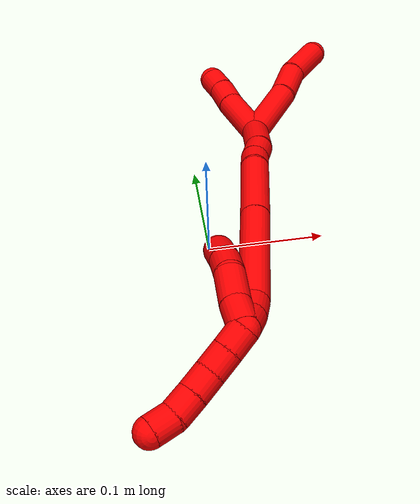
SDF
<sdf version="1.7">
 <world name="default">
  <model name="2">
   <static>0</static>
   <link name="2">
    <collision name="collision-cylinder-e_1_2_8">
     <pose>-0.016816 0.020064 0.017414 -0.855982 -0.564312 0.262965</pose>
     <geometry><cylinder><radius>0.0125</radius><length>0.062883</length></cylinder></geometry>
     <surface>
      <friction><ode><mu>1.16</mu><mu2>1.16</mu2><slip1>0</slip1><slip2>0</slip2></ode></friction>
      <contact><ode><kp>1e+06</kp><kd>1</kd><max_vel>0</max_vel><min_depth>0.001</min_depth></ode></contact>
     </surface>
    </collision>
    <visual name="visual-cylinder-e_1_2_8">
     <pose>-0.016816 0.020064 0.017414 -0.855982 -0.564312 0.262965</pose>
     <geometry><cylinder><radius>0.0125</radius><length>0.062883</length></cylinder></geometry>
     <material><ambient>1 0 0 1</ambient></material>
    </visual>
    <collision name="collision-cylinder-e_2_8_9">
     <pose>-0.040872 0.051772 0.046967 -0.764639 -0.406439 0.165341</pose>
     <geometry><cylinder><radius>0.0125</radius><length>0.036626</length></cylinder></geometry>
     <surface>
      <friction><ode><mu>1.16</mu><mu2>1.16</mu2><slip1>0</slip1><slip2>0</slip2></ode></friction>
      <contact><ode><kp>1e+06</kp><kd>1</kd><max_vel>0</max_vel><min_depth>0.001</min_depth></ode></contact>
     </surface>
    </collision>
    <visual name="visual-cylinder-e_2_8_9">
     <pose>-0.040872 0.051772 0.046967 -0.764639 -0.406439 0.165341</pose>
     <geometry><cylinder><radius>0.0125</radius><length>0.036626</length></cylinder></geometry>
     <material><ambient>1 0 0 1</ambient></material>
    </visual>
    <collision name="collision-cylinder-e_3_9_6">
     <pose>-0.063004 0.076303 0.074901 -0.684283 -0.630941 0.231434</pose>
     <geometry><cylinder><radius>0.0125</radius><length>0.050491</length></cylinder></geometry>
     <surface>
      <friction><ode><mu>1.16</mu><mu2>1.16</mu2><slip1>0</slip1><slip2>0</slip2></ode></friction>
      <contact><ode><kp>1e+06</kp><kd>1</kd><max_vel>0</max_vel><min_depth>0.001</min_depth></ode></contact>
     </surface>
    </collision>
    <visual name="visual-cylinder-e_3_9_6">
     <pose>-0.063004 0.076303 0.074901 -0.684283 -0.630941 0.231434</pose>
     <geometry><cylinder><radius>0.0125</radius><length>0.050491</length></cylinder></geometry>
     <material><ambient>1 0 0 1</ambient></material>
    </visual>
    <collision name="collision-cylinder-e_1_2_10">
     <pose>0.008243 0.012177 0.021318 -0.518967 0.323939 -0.086701</pose>
     <geometry><cylinder><radius>0.0125</radius><length>0.051796</length></cylinder></geometry>
     <surface>
      <friction><ode><mu>1.16</mu><mu2>1.16</mu2><slip1>0</slip1><slip2>0</slip2></ode></friction>
      <contact><ode><kp>1e+06</kp><kd>1</kd><max_vel>0</max_vel><min_depth>0.001</min_depth></ode></contact>
     </surface>
    </collision>
    <visual name="visual-cylinder-e_1_2_10">
     <pose>0.008243 0.012177 0.021318 -0.518967 0.323939 -0.086701</pose>
     <geometry><cylinder><radius>0.0125</radius><length>0.051796</length></cylinder></geometry>
     <material><ambient>1 0 0 1</ambient></material>
    </visual>
    <collision name="collision-cylinder-e_2_10_11">
     <pose>0.01946 0.031056 0.053098 -0.569765 0.23487 -0.069072</pose>
     <geometry><cylinder><radius>0.0125</radius><length>0.02555</length></cylinder></geometry>
     <surface>
      <friction><ode><mu>1.16</mu><mu2>1.16</mu2><slip1>0</slip1><slip2>0</slip2></ode></friction>
      <contact><ode><kp>1e+06</kp><kd>1</kd><max_vel>0</max_vel><min_depth>0.001</min_depth></ode></contact>
     </surface>
    </collision>
    <visual name="visual-cylinder-e_2_10_11">
     <pose>0.01946 0.031056 0.053098 -0.569765 0.23487 -0.069072</pose>
     <geometry><cylinder><radius>0.0125</radius><length>0.02555</length></cylinder></geometry>
     <material><ambient>1 0 0 1</ambient></material>
    </visual>
    <collision name="collision-cylinder-e_3_11_5">
     <pose>0.025906 0.042998 0.072982 -0.507537 0.311652 -0.081446</pose>
     <geometry><cylinder><radius>0.0125</radius><length>0.022654</length></cylinder></geometry>
     <surface>
      <friction><ode><mu>1.16</mu><mu2>1.16</mu2><slip1>0</slip1><slip2>0</slip2></ode></friction>
      <contact><ode><kp>1e+06</kp><kd>1</kd><max_vel>0</max_vel><min_depth>0.001</min_depth></ode></contact>
     </surface>
    </collision>
    <visual name="visual-cylinder-e_3_11_5">
     <pose>0.025906 0.042998 0.072982 -0.507537 0.311652 -0.081446</pose>
     <geometry><cylinder><radius>0.0125</radius><length>0.022654</length></cylinder></geometry>
     <material><ambient>1 0 0 1</ambient></material>
    </visual>
    <collision name="collision-cylinder-e_1_2_12">
     <pose>0.003104 -0.007316 -0.021428 2.81258 0.136262 0.779992</pose>
     <geometry><cylinder><radius>0.0125</radius><length>0.045708</length></cylinder></geometry>
     <surface>
      <friction><ode><mu>1.16</mu><mu2>1.16</mu2><slip1>0</slip1><slip2>0</slip2></ode></friction>
      <contact><ode><kp>1e+06</kp><kd>1</kd><max_vel>0</max_vel><min_depth>0.001</min_depth></ode></contact>
     </surface>
    </collision>
    <visual name="visual-cylinder-e_1_2_12">
     <pose>0.003104 -0.007316 -0.021428 2.81258 0.136262 0.779992</pose>
     <geometry><cylinder><radius>0.0125</radius><length>0.045708</length></cylinder></geometry>
     <material><ambient>1 0 0 1</ambient></material>
    </visual>
    <collision name="collision-cylinder-e_2_12_13">
     <pose>0.010102 -0.019152 -0.052326 2.69626 0.35521 1.34061</pose>
     <geometry><cylinder><radius>0.0125</radius><length>0.022386</length></cylinder></geometry>
     <surface>
      <friction><ode><mu>1.16</mu><mu2>1.16</mu2><slip1>0</slip1><slip2>0</slip2></ode></friction>
      <contact><ode><kp>1e+06</kp><kd>1</kd><max_vel>0</max_vel><min_depth>0.001</min_depth></ode></contact>
     </surface>
    </collision>
    <visual name="visual-cylinder-e_2_12_13">
     <pose>0.010102 -0.019152 -0.052326 2.69626 0.35521 1.34061</pose>
     <geometry><cylinder><radius>0.0125</radius><length>0.022386</length></cylinder></geometry>
     <material><ambient>1 0 0 1</ambient></material>
    </visual>
    <collision name="collision-cylinder-e_3_13_14">
     <pose>0.016056 -0.027429 -0.07094 2.75178 0.205564 0.962951</pose>
     <geometry><cylinder><radius>0.0125</radius><length>0.020196</length></cylinder></geometry>
     <surface>
      <friction><ode><mu>1.16</mu><mu2>1.16</mu2><slip1>0</slip1><slip2>0</slip2></ode></friction>
      <contact><ode><kp>1e+06</kp><kd>1</kd><max_vel>0</max_vel><min_depth>0.001</min_depth></ode></contact>
     </surface>
    </collision>
    <visual name="visual-cylinder-e_3_13_14">
     <pose>0.016056 -0.027429 -0.07094 2.75178 0.205564 0.962951</pose>
     <geometry><cylinder><radius>0.0125</radius><length>0.020196</length></cylinder></geometry>
     <material><ambient>1 0 0 1</ambient></material>
    </visual>
    <collision name="collision-cylinder-e_4_14_15">
     <pose>0.023316 -0.050406 -0.10887 2.55286 0.14908 0.48303</pose>
     <geometry><cylinder><radius>0.0125</radius><length>0.070002</length></cylinder></geometry>
     <surface>
      <friction><ode><mu>1.16</mu><mu2>1.16</mu2><slip1>0</slip1><slip2>0</slip2></ode></friction>
      <contact><ode><kp>1e+06</kp><kd>1</kd><max_vel>0</max_vel><min_depth>0.001</min_depth></ode></contact>
     </surface>
    </collision>
    <visual name="visual-cylinder-e_4_14_15">
     <pose>0.023316 -0.050406 -0.10887 2.55286 0.14908 0.48303</pose>
     <geometry><cylinder><radius>0.0125</radius><length>0.070002</length></cylinder></geometry>
     <material><ambient>1 0 0 1</ambient></material>
    </visual>
    <collision name="collision-cylinder-e_5_15_16">
     <pose>0.036511 -0.098687 -0.178368 2.52168 0.158529 0.486199</pose>
     <geometry><cylinder><radius>0.0125</radius><length>0.10131</length></cylinder></geometry>
     <surface>
      <friction><ode><mu>1.16</mu><mu2>1.16</mu2><slip1>0</slip1><slip2>0</slip2></ode></friction>
      <contact><ode><kp>1e+06</kp><kd>1</kd><max_vel>0</max_vel><min_depth>0.001</min_depth></ode></contact>
     </surface>
    </collision>
    <visual name="visual-cylinder-e_5_15_16">
     <pose>0.036511 -0.098687 -0.178368 2.52168 0.158529 0.486199</pose>
     <geometry><cylinder><radius>0.0125</radius><length>0.10131</length></cylinder></geometry>
     <material><ambient>1 0 0 1</ambient></material>
    </visual>
    <collision name="collision-cylinder-e_6_16_17">
     <pose>0.047644 -0.131712 -0.227749 2.71254 0.317843 1.26844</pose>
     <geometry><cylinder><radius>0.0125</radius><length>0.020071</length></cylinder></geometry>
     <surface>
      <friction><ode><mu>1.16</mu><mu2>1.16</mu2><slip1>0</slip1><slip2>0</slip2></ode></friction>
      <contact><ode><kp>1e+06</kp><kd>1</kd><max_vel>0</max_vel><min_depth>0.001</min_depth></ode></contact>
     </surface>
    </collision>
    <visual name="visual-cylinder-e_6_16_17">
     <pose>0.047644 -0.131712 -0.227749 2.71254 0.317843 1.26844</pose>
     <geometry><cylinder><radius>0.0125</radius><length>0.020071</length></cylinder></geometry>
     <material><ambient>1 0 0 1</ambient></material>
    </visual>
    <collision name="collision-cylinder-e_7_17_1">
     <pose>0.055112 -0.13826 -0.245242 2.85691 0.440345 2.00248</pose>
     <geometry><cylinder><radius>0.0125</radius><length>0.020328</length></cylinder></geometry>
     <surface>
      <friction><ode><mu>1.16</mu><mu2>1.16</mu2><slip1>0</slip1><slip2>0</slip2></ode></friction>
      <contact><ode><kp>1e+06</kp><kd>1</kd><max_vel>0</max_vel><min_depth>0.001</min_depth></ode></contact>
     </surface>
    </collision>
    <visual name="visual-cylinder-e_7_17_1">
     <pose>0.055112 -0.13826 -0.245242 2.85691 0.440345 2.00248</pose>
     <geometry><cylinder><radius>0.0125</radius><length>0.020328</length></cylinder></geometry>
     <material><ambient>1 0 0 1</ambient></material>
    </visual>
    <collision name="collision-cylinder-e_1_1_18">
     <pose>0.060913 -0.134281 -0.243772 -0.567405 0.119705 -0.03494</pose>
     <geometry><cylinder><radius>0.0125</radius><length>0.024591</length></cylinder></geometry>
     <surface>
      <friction><ode><mu>1.16</mu><mu2>1.16</mu2><slip1>0</slip1><slip2>0</slip2></ode></friction>
      <contact><ode><kp>1e+06</kp><kd>1</kd><max_vel>0</max_vel><min_depth>0.001</min_depth></ode></contact>
     </surface>
    </collision>
    <visual name="visual-cylinder-e_1_1_18">
     <pose>0.060913 -0.134281 -0.243772 -0.567405 0.119705 -0.03494</pose>
     <geometry><cylinder><radius>0.0125</radius><length>0.024591</length></cylinder></geometry>
     <material><ambient>1 0 0 1</ambient></material>
    </visual>
    <collision name="collision-cylinder-e_2_18_19">
     <pose>0.062788 -0.118271 -0.220999 -0.64817 0.025991 -0.008732</pose>
     <geometry><cylinder><radius>0.0125</radius><length>0.031314</length></cylinder></geometry>
     <surface>
      <friction><ode><mu>1.16</mu><mu2>1.16</mu2><slip1>0</slip1><slip2>0</slip2></ode></friction>
      <contact><ode><kp>1e+06</kp><kd>1</kd><max_vel>0</max_vel><min_depth>0.001</min_depth></ode></contact>
     </surface>
    </collision>
    <visual name="visual-cylinder-e_2_18_19">
     <pose>0.062788 -0.118271 -0.220999 -0.64817 0.025991 -0.008732</pose>
     <geometry><cylinder><radius>0.0125</radius><length>0.031314</length></cylinder></geometry>
     <material><ambient>1 0 0 1</ambient></material>
    </visual>
    <collision name="collision-cylinder-e_3_19_20">
     <pose>0.06322 -0.10517 -0.198905 -0.362896 0.002403 -0.000441</pose>
     <geometry><cylinder><radius>0.0125</radius><length>0.020573</length></cylinder></geometry>
     <surface>
      <friction><ode><mu>1.16</mu><mu2>1.16</mu2><slip1>0</slip1><slip2>0</slip2></ode></friction>
      <contact><ode><kp>1e+06</kp><kd>1</kd><max_vel>0</max_vel><min_depth>0.001</min_depth></ode></contact>
     </surface>
    </collision>
    <visual name="visual-cylinder-e_3_19_20">
     <pose>0.06322 -0.10517 -0.198905 -0.362896 0.002403 -0.000441</pose>
     <geometry><cylinder><radius>0.0125</radius><length>0.020573</length></cylinder></geometry>
     <material><ambient>1 0 0 1</ambient></material>
    </visual>
    <collision name="collision-cylinder-e_4_20_4">
     <pose>0.06335 -0.099255 -0.177748 -0.193689 0.008963 -0.000871</pose>
     <geometry><cylinder><radius>0.0125</radius><length>0.023522</length></cylinder></geometry>
     <surface>
      <friction><ode><mu>1.16</mu><mu2>1.16</mu2><slip1>0</slip1><slip2>0</slip2></ode></friction>
      <contact><ode><kp>1e+06</kp><kd>1</kd><max_vel>0</max_vel><min_depth>0.001</min_depth></ode></contact>
     </surface>
    </collision>
    <visual name="visual-cylinder-e_4_20_4">
     <pose>0.06335 -0.099255 -0.177748 -0.193689 0.008963 -0.000871</pose>
     <geometry><cylinder><radius>0.0125</radius><length>0.023522</length></cylinder></geometry>
     <material><ambient>1 0 0 1</ambient></material>
    </visual>
    <collision name="collision-cylinder-e_1_1_21">
     <pose>0.065134 -0.148976 -0.255277 1.71863 0.605229 0.694894</pose>
     <geometry><cylinder><radius>0.0125</radius><length>0.02</length></cylinder></geometry>
     <surface>
      <friction><ode><mu>1.16</mu><mu2>1.16</mu2><slip1>0</slip1><slip2>0</slip2></ode></friction>
      <contact><ode><kp>1e+06</kp><kd>1</kd><max_vel>0</max_vel><min_depth>0.001</min_depth></ode></contact>
     </surface>
    </collision>
    <visual name="visual-cylinder-e_1_1_21">
     <pose>0.065134 -0.148976 -0.255277 1.71863 0.605229 0.694894</pose>
     <geometry><cylinder><radius>0.0125</radius><length>0.02</length></cylinder></geometry>
     <material><ambient>1 0 0 1</ambient></material>
    </visual>
    <collision name="collision-cylinder-e_2_21_22">
     <pose>0.076648 -0.165154 -0.257663 1.71572 0.621674 0.711464</pose>
     <geometry><cylinder><radius>0.0125</radius><length>0.02</length></cylinder></geometry>
     <surface>
      <friction><ode><mu>1.16</mu><mu2>1.16</mu2><slip1>0</slip1><slip2>0</slip2></ode></friction>
      <contact><ode><kp>1e+06</kp><kd>1</kd><max_vel>0</max_vel><min_depth>0.001</min_depth></ode></contact>
     </surface>
    </collision>
    <visual name="visual-cylinder-e_2_21_22">
     <pose>0.076648 -0.165154 -0.257663 1.71572 0.621674 0.711464</pose>
     <geometry><cylinder><radius>0.0125</radius><length>0.02</length></cylinder></geometry>
     <material><ambient>1 0 0 1</ambient></material>
    </visual>
    <collision name="collision-cylinder-e_3_22_23">
     <pose>0.08853 -0.180796 -0.261197 1.87195 0.65081 0.859133</pose>
     <geometry><cylinder><radius>0.0125</radius><length>0.02</length></cylinder></geometry>
     <surface>
      <friction><ode><mu>1.16</mu><mu2>1.16</mu2><slip1>0</slip1><slip2>0</slip2></ode></friction>
      <contact><ode><kp>1e+06</kp><kd>1</kd><max_vel>0</max_vel><min_depth>0.001</min_depth></ode></contact>
     </surface>
    </collision>
    <visual name="visual-cylinder-e_3_22_23">
     <pose>0.08853 -0.180796 -0.261197 1.87195 0.65081 0.859133</pose>
     <geometry><cylinder><radius>0.0125</radius><length>0.02</length></cylinder></geometry>
     <material><ambient>1 0 0 1</ambient></material>
    </visual>
    <collision name="collision-cylinder-e_4_23_24">
     <pose>0.100898 -0.195824 -0.265787 1.86247 0.682784 0.891209</pose>
     <geometry><cylinder><radius>0.0125</radius><length>0.02</length></cylinder></geometry>
     <surface>
      <friction><ode><mu>1.16</mu><mu2>1.16</mu2><slip1>0</slip1><slip2>0</slip2></ode></friction>
      <contact><ode><kp>1e+06</kp><kd>1</kd><max_vel>0</max_vel><min_depth>0.001</min_depth></ode></contact>
     </surface>
    </collision>
    <visual name="visual-cylinder-e_4_23_24">
     <pose>0.100898 -0.195824 -0.265787 1.86247 0.682784 0.891209</pose>
     <geometry><cylinder><radius>0.0125</radius><length>0.02</length></cylinder></geometry>
     <material><ambient>1 0 0 1</ambient></material>
    </visual>
    <collision name="collision-cylinder-e_5_24_3">
     <pose>0.115524 -0.208421 -0.270055 1.94629 0.982045 1.3317</pose>
     <geometry><cylinder><radius>0.0125</radius><length>0.02</length></cylinder></geometry>
     <surface>
      <friction><ode><mu>1.16</mu><mu2>1.16</mu2><slip1>0</slip1><slip2>0</slip2></ode></friction>
      <contact><ode><kp>1e+06</kp><kd>1</kd><max_vel>0</max_vel><min_depth>0.001</min_depth></ode></contact>
     </surface>
    </collision>
    <visual name="visual-cylinder-e_5_24_3">
     <pose>0.115524 -0.208421 -0.270055 1.94629 0.982045 1.3317</pose>
     <geometry><cylinder><radius>0.0125</radius><length>0.02</length></cylinder></geometry>
     <material><ambient>1 0 0 1</ambient></material>
    </visual>
    <collision name="collision-sphere-3">
     <pose>0.12384 -0.213587 -0.272091 0 -0 0</pose>
     <geometry><sphere><radius>0.0125</radius></sphere></geometry>
     <surface>
      <friction><ode><mu>1.16</mu><mu2>1.16</mu2><slip1>0</slip1><slip2>0</slip2></ode></friction>
      <contact><ode><kp>1e+06</kp><kd>1</kd><max_vel>0</max_vel><min_depth>0.001</min_depth></ode></contact>
     </surface>
    </collision>
    <visual name="visual-sphere-3">
     <pose>0.12384 -0.213587 -0.272091 0 -0 0</pose>
     <geometry><sphere><radius>0.0125</radius></sphere></geometry>
     <material><ambient>1 0 0 1</ambient></material>
    </visual>
    <collision name="collision-sphere-24">
     <pose>0.107207 -0.203255 -0.268018 0 -0 0</pose>
     <geometry><sphere><radius>0.0125</radius></sphere></geometry>
     <surface>
      <friction><ode><mu>1.16</mu><mu2>1.16</mu2><slip1>0</slip1><slip2>0</slip2></ode></friction>
      <contact><ode><kp>1e+06</kp><kd>1</kd><max_vel>0</max_vel><min_depth>0.001</min_depth></ode></contact>
     </surface>
    </collision>
    <visual name="visual-sphere-24">
     <pose>0.107207 -0.203255 -0.268018 0 -0 0</pose>
     <geometry><sphere><radius>0.0125</radius></sphere></geometry>
     <material><ambient>1 0 0 1</ambient></material>
    </visual>
    <collision name="collision-sphere-23">
     <pose>0.094588 -0.188394 -0.263556 0 -0 0</pose>
     <geometry><sphere><radius>0.0125</radius></sphere></geometry>
     <surface>
      <friction><ode><mu>1.16</mu><mu2>1.16</mu2><slip1>0</slip1><slip2>0</slip2></ode></friction>
      <contact><ode><kp>1e+06</kp><kd>1</kd><max_vel>0</max_vel><min_depth>0.001</min_depth></ode></contact>
     </surface>
    </collision>
    <visual name="visual-sphere-23">
     <pose>0.094588 -0.188394 -0.263556 0 -0 0</pose>
     <geometry><sphere><radius>0.0125</radius></sphere></geometry>
     <material><ambient>1 0 0 1</ambient></material>
    </visual>
    <collision name="collision-sphere-22">
     <pose>0.082472 -0.173198 -0.258837 0 -0 0</pose>
     <geometry><sphere><radius>0.0125</radius></sphere></geometry>
     <surface>
      <friction><ode><mu>1.16</mu><mu2>1.16</mu2><slip1>0</slip1><slip2>0</slip2></ode></friction>
      <contact><ode><kp>1e+06</kp><kd>1</kd><max_vel>0</max_vel><min_depth>0.001</min_depth></ode></contact>
     </surface>
    </collision>
    <visual name="visual-sphere-22">
     <pose>0.082472 -0.173198 -0.258837 0 -0 0</pose>
     <geometry><sphere><radius>0.0125</radius></sphere></geometry>
     <material><ambient>1 0 0 1</ambient></material>
    </visual>
    <collision name="collision-sphere-21">
     <pose>0.070824 -0.15711 -0.256489 0 -0 0</pose>
     <geometry><sphere><radius>0.0125</radius></sphere></geometry>
     <surface>
      <friction><ode><mu>1.16</mu><mu2>1.16</mu2><slip1>0</slip1><slip2>0</slip2></ode></friction>
      <contact><ode><kp>1e+06</kp><kd>1</kd><max_vel>0</max_vel><min_depth>0.001</min_depth></ode></contact>
     </surface>
    </collision>
    <visual name="visual-sphere-21">
     <pose>0.070824 -0.15711 -0.256489 0 -0 0</pose>
     <geometry><sphere><radius>0.0125</radius></sphere></geometry>
     <material><ambient>1 0 0 1</ambient></material>
    </visual>
    <collision name="collision-sphere-4">
     <pose>0.063455 -0.096991 -0.166208 0 -0 0</pose>
     <geometry><sphere><radius>0.0125</radius></sphere></geometry>
     <surface>
      <friction><ode><mu>1.16</mu><mu2>1.16</mu2><slip1>0</slip1><slip2>0</slip2></ode></friction>
      <contact><ode><kp>1e+06</kp><kd>1</kd><max_vel>0</max_vel><min_depth>0.001</min_depth></ode></contact>
     </surface>
    </collision>
    <visual name="visual-sphere-4">
     <pose>0.063455 -0.096991 -0.166208 0 -0 0</pose>
     <geometry><sphere><radius>0.0125</radius></sphere></geometry>
     <material><ambient>1 0 0 1</ambient></material>
    </visual>
    <collision name="collision-sphere-20">
     <pose>0.063245 -0.101519 -0.189289 0 -0 0</pose>
     <geometry><sphere><radius>0.0125</radius></sphere></geometry>
     <surface>
      <friction><ode><mu>1.16</mu><mu2>1.16</mu2><slip1>0</slip1><slip2>0</slip2></ode></friction>
      <contact><ode><kp>1e+06</kp><kd>1</kd><max_vel>0</max_vel><min_depth>0.001</min_depth></ode></contact>
     </surface>
    </collision>
    <visual name="visual-sphere-20">
     <pose>0.063245 -0.101519 -0.189289 0 -0 0</pose>
     <geometry><sphere><radius>0.0125</radius></sphere></geometry>
     <material><ambient>1 0 0 1</ambient></material>
    </visual>
    <collision name="collision-sphere-11">
     <pose>0.022433 0.037758 0.06356 0 -0 0</pose>
     <geometry><sphere><radius>0.0125</radius></sphere></geometry>
     <surface>
      <friction><ode><mu>1.16</mu><mu2>1.16</mu2><slip1>0</slip1><slip2>0</slip2></ode></friction>
      <contact><ode><kp>1e+06</kp><kd>1</kd><max_vel>0</max_vel><min_depth>0.001</min_depth></ode></contact>
     </surface>
    </collision>
    <visual name="visual-sphere-11">
     <pose>0.022433 0.037758 0.06356 0 -0 0</pose>
     <geometry><sphere><radius>0.0125</radius></sphere></geometry>
     <material><ambient>1 0 0 1</ambient></material>
    </visual>
    <collision name="collision-sphere-10">
     <pose>0.016487 0.024354 0.042637 0 -0 0</pose>
     <geometry><sphere><radius>0.0125</radius></sphere></geometry>
     <surface>
      <friction><ode><mu>1.16</mu><mu2>1.16</mu2><slip1>0</slip1><slip2>0</slip2></ode></friction>
      <contact><ode><kp>1e+06</kp><kd>1</kd><max_vel>0</max_vel><min_depth>0.001</min_depth></ode></contact>
     </surface>
    </collision>
    <visual name="visual-sphere-10">
     <pose>0.016487 0.024354 0.042637 0 -0 0</pose>
     <geometry><sphere><radius>0.0125</radius></sphere></geometry>
     <material><ambient>1 0 0 1</ambient></material>
    </visual>
    <collision name="collision-sphere-6">
     <pose>-0.077897 0.089188 0.090697 0 -0 0</pose>
     <geometry><sphere><radius>0.0125</radius></sphere></geometry>
     <surface>
      <friction><ode><mu>1.16</mu><mu2>1.16</mu2><slip1>0</slip1><slip2>0</slip2></ode></friction>
      <contact><ode><kp>1e+06</kp><kd>1</kd><max_vel>0</max_vel><min_depth>0.001</min_depth></ode></contact>
     </surface>
    </collision>
    <visual name="visual-sphere-6">
     <pose>-0.077897 0.089188 0.090697 0 -0 0</pose>
     <geometry><sphere><radius>0.0125</radius></sphere></geometry>
     <material><ambient>1 0 0 1</ambient></material>
    </visual>
    <collision name="collision-sphere-9">
     <pose>-0.048112 0.063417 0.059105 0 -0 0</pose>
     <geometry><sphere><radius>0.0125</radius></sphere></geometry>
     <surface>
      <friction><ode><mu>1.16</mu><mu2>1.16</mu2><slip1>0</slip1><slip2>0</slip2></ode></friction>
      <contact><ode><kp>1e+06</kp><kd>1</kd><max_vel>0</max_vel><min_depth>0.001</min_depth></ode></contact>
     </surface>
    </collision>
    <visual name="visual-sphere-9">
     <pose>-0.048112 0.063417 0.059105 0 -0 0</pose>
     <geometry><sphere><radius>0.0125</radius></sphere></geometry>
     <material><ambient>1 0 0 1</ambient></material>
    </visual>
    <collision name="collision-sphere-2">
     <geometry><sphere><radius>0.0125</radius></sphere></geometry>
     <surface>
      <friction><ode><mu>1.16</mu><mu2>1.16</mu2><slip1>0</slip1><slip2>0</slip2></ode></friction>
      <contact><ode><kp>1e+06</kp><kd>1</kd><max_vel>0</max_vel><min_depth>0.001</min_depth></ode></contact>
     </surface>
    </collision>
    <visual name="visual-sphere-2">
     <geometry><sphere><radius>0.0125</radius></sphere></geometry>
     <material><ambient>1 0 0 1</ambient></material>
    </visual>
    <collision name="collision-sphere-19">
     <pose>0.063195 -0.108822 -0.208522 0 -0 0</pose>
     <geometry><sphere><radius>0.0125</radius></sphere></geometry>
     <surface>
      <friction><ode><mu>1.16</mu><mu2>1.16</mu2><slip1>0</slip1><slip2>0</slip2></ode></friction>
      <contact><ode><kp>1e+06</kp><kd>1</kd><max_vel>0</max_vel><min_depth>0.001</min_depth></ode></contact>
     </surface>
    </collision>
    <visual name="visual-sphere-19">
     <pose>0.063195 -0.108822 -0.208522 0 -0 0</pose>
     <geometry><sphere><radius>0.0125</radius></sphere></geometry>
     <material><ambient>1 0 0 1</ambient></material>
    </visual>
    <collision name="collision-sphere-8">
     <pose>-0.033632 0.040127 0.034828 0 -0 0</pose>
     <geometry><sphere><radius>0.0125</radius></sphere></geometry>
     <surface>
      <friction><ode><mu>1.16</mu><mu2>1.16</mu2><slip1>0</slip1><slip2>0</slip2></ode></friction>
      <contact><ode><kp>1e+06</kp><kd>1</kd><max_vel>0</max_vel><min_depth>0.001</min_depth></ode></contact>
     </surface>
    </collision>
    <visual name="visual-sphere-8">
     <pose>-0.033632 0.040127 0.034828 0 -0 0</pose>
     <geometry><sphere><radius>0.0125</radius></sphere></geometry>
     <material><ambient>1 0 0 1</ambient></material>
    </visual>
    <collision name="collision-sphere-5">
     <pose>0.029379 0.048238 0.082405 0 -0 0</pose>
     <geometry><sphere><radius>0.0125</radius></sphere></geometry>
     <surface>
      <friction><ode><mu>1.16</mu><mu2>1.16</mu2><slip1>0</slip1><slip2>0</slip2></ode></friction>
      <contact><ode><kp>1e+06</kp><kd>1</kd><max_vel>0</max_vel><min_depth>0.001</min_depth></ode></contact>
     </surface>
    </collision>
    <visual name="visual-sphere-5">
     <pose>0.029379 0.048238 0.082405 0 -0 0</pose>
     <geometry><sphere><radius>0.0125</radius></sphere></geometry>
     <material><ambient>1 0 0 1</ambient></material>
    </visual>
    <collision name="collision-sphere-12">
     <pose>0.006209 -0.014632 -0.042855 0 -0 0</pose>
     <geometry><sphere><radius>0.0125</radius></sphere></geometry>
     <surface>
      <friction><ode><mu>1.16</mu><mu2>1.16</mu2><slip1>0</slip1><slip2>0</slip2></ode></friction>
      <contact><ode><kp>1e+06</kp><kd>1</kd><max_vel>0</max_vel><min_depth>0.001</min_depth></ode></contact>
     </surface>
    </collision>
    <visual name="visual-sphere-12">
     <pose>0.006209 -0.014632 -0.042855 0 -0 0</pose>
     <geometry><sphere><radius>0.0125</radius></sphere></geometry>
     <material><ambient>1 0 0 1</ambient></material>
    </visual>
    <collision name="collision-sphere-13">
     <pose>0.013995 -0.023673 -0.061797 0 -0 0</pose>
     <geometry><sphere><radius>0.0125</radius></sphere></geometry>
     <surface>
      <friction><ode><mu>1.16</mu><mu2>1.16</mu2><slip1>0</slip1><slip2>0</slip2></ode></friction>
      <contact><ode><kp>1e+06</kp><kd>1</kd><max_vel>0</max_vel><min_depth>0.001</min_depth></ode></contact>
     </surface>
    </collision>
    <visual name="visual-sphere-13">
     <pose>0.013995 -0.023673 -0.061797 0 -0 0</pose>
     <geometry><sphere><radius>0.0125</radius></sphere></geometry>
     <material><ambient>1 0 0 1</ambient></material>
    </visual>
    <collision name="collision-sphere-14">
     <pose>0.018117 -0.031186 -0.080084 0 -0 0</pose>
     <geometry><sphere><radius>0.0125</radius></sphere></geometry>
     <surface>
      <friction><ode><mu>1.16</mu><mu2>1.16</mu2><slip1>0</slip1><slip2>0</slip2></ode></friction>
      <contact><ode><kp>1e+06</kp><kd>1</kd><max_vel>0</max_vel><min_depth>0.001</min_depth></ode></contact>
     </surface>
    </collision>
    <visual name="visual-sphere-14">
     <pose>0.018117 -0.031186 -0.080084 0 -0 0</pose>
     <geometry><sphere><radius>0.0125</radius></sphere></geometry>
     <material><ambient>1 0 0 1</ambient></material>
    </visual>
    <collision name="collision-sphere-15">
     <pose>0.028514 -0.069627 -0.137655 0 -0 0</pose>
     <geometry><sphere><radius>0.0125</radius></sphere></geometry>
     <surface>
      <friction><ode><mu>1.16</mu><mu2>1.16</mu2><slip1>0</slip1><slip2>0</slip2></ode></friction>
      <contact><ode><kp>1e+06</kp><kd>1</kd><max_vel>0</max_vel><min_depth>0.001</min_depth></ode></contact>
     </surface>
    </collision>
    <visual name="visual-sphere-15">
     <pose>0.028514 -0.069627 -0.137655 0 -0 0</pose>
     <geometry><sphere><radius>0.0125</radius></sphere></geometry>
     <material><ambient>1 0 0 1</ambient></material>
    </visual>
    <collision name="collision-sphere-16">
     <pose>0.044507 -0.127746 -0.21908 0 -0 0</pose>
     <geometry><sphere><radius>0.0125</radius></sphere></geometry>
     <surface>
      <friction><ode><mu>1.16</mu><mu2>1.16</mu2><slip1>0</slip1><slip2>0</slip2></ode></friction>
      <contact><ode><kp>1e+06</kp><kd>1</kd><max_vel>0</max_vel><min_depth>0.001</min_depth></ode></contact>
     </surface>
    </collision>
    <visual name="visual-sphere-16">
     <pose>0.044507 -0.127746 -0.21908 0 -0 0</pose>
     <geometry><sphere><radius>0.0125</radius></sphere></geometry>
     <material><ambient>1 0 0 1</ambient></material>
    </visual>
    <collision name="collision-sphere-17">
     <pose>0.05078 -0.135678 -0.236418 0 -0 0</pose>
     <geometry><sphere><radius>0.0125</radius></sphere></geometry>
     <surface>
      <friction><ode><mu>1.16</mu><mu2>1.16</mu2><slip1>0</slip1><slip2>0</slip2></ode></friction>
      <contact><ode><kp>1e+06</kp><kd>1</kd><max_vel>0</max_vel><min_depth>0.001</min_depth></ode></contact>
     </surface>
    </collision>
    <visual name="visual-sphere-17">
     <pose>0.05078 -0.135678 -0.236418 0 -0 0</pose>
     <geometry><sphere><radius>0.0125</radius></sphere></geometry>
     <material><ambient>1 0 0 1</ambient></material>
    </visual>
    <collision name="collision-sphere-1">
     <pose>0.059445 -0.140842 -0.254066 0 -0 0</pose>
     <geometry><sphere><radius>0.0125</radius></sphere></geometry>
     <surface>
      <friction><ode><mu>1.16</mu><mu2>1.16</mu2><slip1>0</slip1><slip2>0</slip2></ode></friction>
      <contact><ode><kp>1e+06</kp><kd>1</kd><max_vel>0</max_vel><min_depth>0.001</min_depth></ode></contact>
     </surface>
    </collision>
    <visual name="visual-sphere-1">
     <pose>0.059445 -0.140842 -0.254066 0 -0 0</pose>
     <geometry><sphere><radius>0.0125</radius></sphere></geometry>
     <material><ambient>1 0 0 1</ambient></material>
    </visual>
    <collision name="collision-sphere-18">
     <pose>0.062381 -0.127721 -0.233477 0 -0 0</pose>
     <geometry><sphere><radius>0.0125</radius></sphere></geometry>
     <surface>
      <friction><ode><mu>1.16</mu><mu2>1.16</mu2><slip1>0</slip1><slip2>0</slip2></ode></friction>
      <contact><ode><kp>1e+06</kp><kd>1</kd><max_vel>0</max_vel><min_depth>0.001</min_depth></ode></contact>
     </surface>
    </collision>
    <visual name="visual-sphere-18">
     <pose>0.062381 -0.127721 -0.233477 0 -0 0</pose>
     <geometry><sphere><radius>0.0125</radius></sphere></geometry>
     <material><ambient>1 0 0 1</ambient></material>
    </visual>
    <inertial>
     <pose>0.02542 -0.053835 -0.100677 0 -0 0</pose>
     <mass>0.75</mass>
     <inertia><ixx>0.000264</ixx><ixy>0</ixy><ixz>0</ixz><iyy>4.5e-05</iyy><iyz>0</iyz><izz>3.1e-05</izz></inertia>
    </inertial>
   </link>
   <pose>0.06442 0.136184 0.014719 2.21448 -0.243573 3.10686</pose>
  </model>
 </world>
</sdf>
